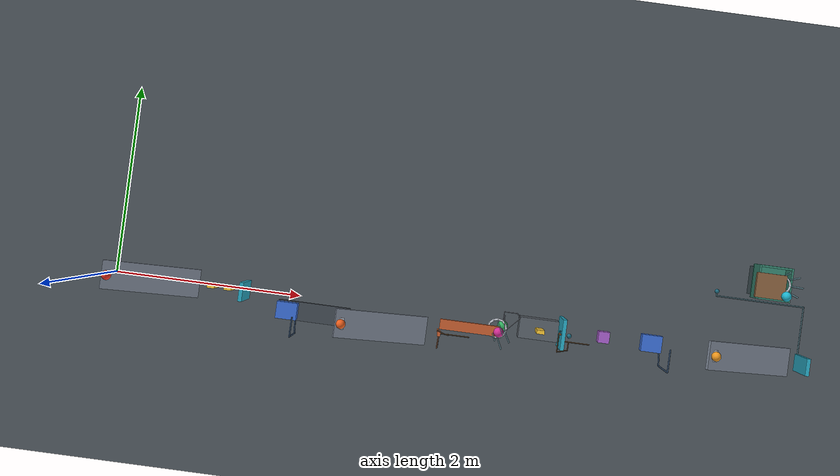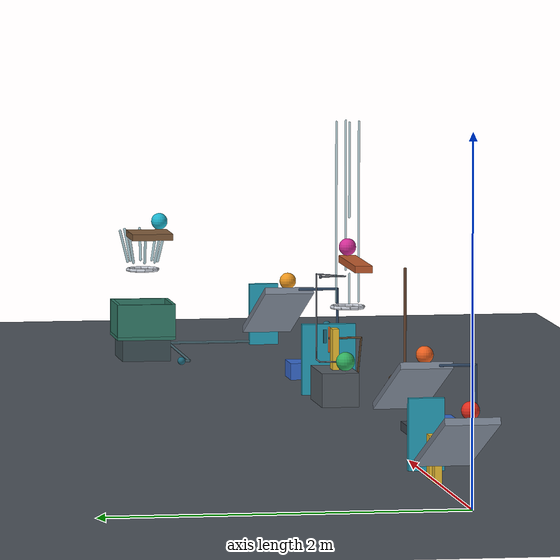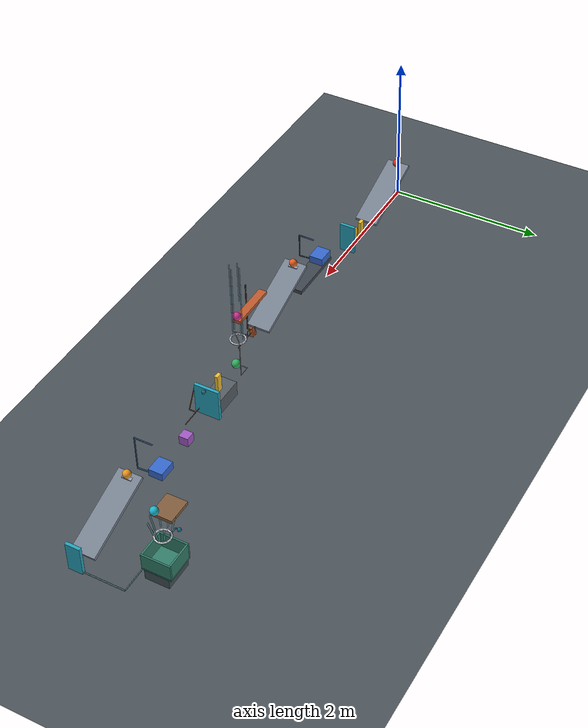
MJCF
<mujoco model="passive_chain_reaction_revised2">
  <compiler angle="degree" autolimits="true" inertiafromgeom="auto"/>
  <option timestep="0.002" gravity="0 0 -9.81" integrator="implicitfast" cone="elliptic" iterations="100" tolerance="1e-10"/>
  <size njmax="4000" nconmax="800"/>

  <!-- All initial velocities are zero. -->
  <!-- Soft-contact damping approximates restitution 0.05. -->
  <!-- Level seats hold ball2 and ball4 until their carts arrive. -->
  <!-- The lever latch blocks horizontal striker motion rather than allowing the plate to slide beneath a strut. -->
  <!-- The pendulum has a rigid bypass frame outside ring1; its bob remains 0.50 m below its hinge initially. -->

  <visual>
    <global azimuth="110" elevation="-25"/>
    <headlight ambient="0.35 0.35 0.35" diffuse="0.65 0.65 0.65" specular="0.15 0.15 0.15"/>
    <map znear="0.01" zfar="50"/>
  </visual>

  <worldbody>
    <light name="overhead_light" pos="4 -3 7" dir="0 0 -1" diffuse="0.8 0.8 0.8"/>
    <camera name="overview" pos="4 -9 6.4" xyaxes="1 0 0 0 0.58 0.814"/>
    <geom name="floor" type="plane" size="15 8 0.1" friction="0.70 0.005 0.003" condim="6" solref="0.006 0.6901" rgba="0.30 0.33 0.36 1"/>

    <body name="ramp1" pos="0 0 0">
      <geom name="ramp1_surface" type="box" pos="0.463006 0 0.302216" quat="0.984807753 0 0.173648178 0" size="0.50 0.15 0.02" friction="0.70 0.005 0.0001" condim="6" solref="0.006 0.6901" rgba="0.48 0.52 0.58 1"/>
    </body>

    <body name="ball1" pos="0.064086 0 0.521904">
      <freejoint name="ball1_free"/>
      <geom name="ball1_sphere" type="sphere" size="0.05" mass="0.20" friction="0.70 0.005 0.0001" condim="6" solref="0.006 0.6901" rgba="0.90 0.18 0.12 1"/>
    </body>

    <body name="domino1" pos="1.079693 0 0.12">
      <freejoint name="domino1_free"/>
      <geom name="domino1_box" type="box" size="0.04 0.02 0.12" mass="0.25" friction="0.70 0.005 0.0001" condim="6" solref="0.006 0.6901" rgba="0.95 0.76 0.20 1"/>
    </body>

    <body name="domino2" pos="1.259693 0 0.12">
      <freejoint name="domino2_free"/>
      <geom name="domino2_box" type="box" size="0.04 0.02 0.12" mass="0.25" friction="0.70 0.005 0.0001" condim="6" solref="0.006 0.6901" rgba="0.95 0.76 0.20 1"/>
    </body>

    <body name="flap1" pos="1.439693 0 0.02">
      <joint name="flap1_hinge" type="hinge" axis="0 1 0" range="0 65" damping="0.04" solreflimit="0.004 1" solimplimit="0.99 0.999 0.0001"/>
      <geom name="flap1_panel" type="box" pos="0 0 0.20" size="0.02 0.10 0.20" mass="0.30" friction="0.70 0.005 0.0001" condim="6" solref="0.006 0.6901" rgba="0.15 0.65 0.75 1"/>
    </body>

    <body name="cart1_rail" pos="2.184693 -0.15 0.123">
      <geom name="cart1_rail_box" type="box" size="0.385 0.10 0.025" friction="0.70 0.005 0.0001" condim="6" solref="0.006 0.6901" rgba="0.25 0.28 0.31 1"/>
    </body>

    <body name="cart1" pos="1.909693 -0.15 0.20">
      <joint name="cart1_slide" type="slide" axis="1 0 0" range="0 0.60" damping="0.20" solreflimit="0.004 1" solimplimit="0.99 0.999 0.0001"/>
      <geom name="cart1_box" type="box" size="0.11 0.09 0.05" mass="0.50" friction="0.70 0.005 0.0001" condim="6" solref="0.006 0.6901" rgba="0.22 0.42 0.82 1"/>
      <geom name="cart1_mast_base" type="capsule" fromto="0.09 0 0 0.11 -0.23 0" size="0.008" mass="0" friction="0.70 0.005 0.0001" condim="6" solref="0.006 0.6901" rgba="0.20 0.30 0.42 1"/>
      <geom name="cart1_mast" type="capsule" fromto="0.11 -0.23 0 0.11 -0.23 0.325" size="0.008" mass="0" friction="0.70 0.005 0.0001" condim="6" solref="0.006 0.6901" rgba="0.20 0.30 0.42 1"/>
      <geom name="cart1_pusher" type="capsule" fromto="0.11 -0.23 0.325 0.11 -0.03 0.325" size="0.008" mass="0" friction="0.70 0.005 0.0001" condim="6" solref="0.006 0.6901" rgba="0.20 0.30 0.42 1"/>
    </body>

    <body name="ramp2" pos="2.463607 -0.18 0">
      <geom name="ramp2_surface" type="box" pos="0.463006 0 0.302216" quat="0.984807753 0 0.173648178 0" size="0.50 0.15 0.02" friction="0.70 0.005 0.0001" condim="6" solref="0.006 0.6901" rgba="0.48 0.52 0.58 1"/>
      <geom name="ramp2_start_seat" type="box" pos="0.064086 0 0.469" size="0.025 0.06 0.006" friction="0.70 0.005 0.0001" condim="6" solref="0.006 0.6901" rgba="0.62 0.65 0.70 1"/>
    </body>

    <body name="ball2" pos="2.527693 -0.18 0.525">
      <freejoint name="ball2_free"/>
      <geom name="ball2_sphere" type="sphere" size="0.05" mass="0.20" friction="0.70 0.005 0.0001" condim="6" solref="0.006 0.6901" rgba="0.94 0.38 0.12 1"/>
    </body>

    <body name="lever1" pos="3.841300 0 0.90">
      <inertial pos="0 0 0" mass="0.50" diaginertia="0.000483333 0.015066667 0.015416667"/>
      <joint name="lever1_hinge" type="hinge" axis="0 -1 0" range="0 45" damping="0.04" stiffness="4.0" springref="45" solreflimit="0.004 1" solimplimit="0.99 0.999 0.0001"/>
      <geom name="lever1_beam" type="box" size="0.30 0.05 0.02" mass="0" friction="0.70 0.005 0.0001" condim="6" solref="0.006 0.6901" rgba="0.76 0.36 0.18 1"/>
      <geom name="lever1_striker_arm" type="capsule" fromto="-0.30 -0.24 0 -0.30 -0.24 -0.68" size="0.008" mass="0" friction="0.70 0.005 0.0001" condim="6" solref="0.006 0.6901" rgba="0.42 0.28 0.20 1"/>
      <geom name="lever1_striker_crossarm" type="capsule" fromto="-0.30 -0.24 -0.68 -0.30 -0.18 -0.68" size="0.008" mass="0" friction="0.70 0.005 0.0001" condim="6" solref="0.006 0.6901" rgba="0.42 0.28 0.20 1"/>
      <geom name="lever1_striker_plate" type="box" pos="-0.30 -0.18 -0.71" size="0.018 0.025 0.06" mass="0" friction="0.70 0.005 0.0001" condim="6" solref="0.006 0.6901" rgba="0.76 0.36 0.18 1"/>
    </body>

    <!-- The bar's left cap touches the striker's forward face at its mid-height. -->
    <!-- Its initial load is axial, producing no opening torque about the vertical latch hinge. -->
    <!-- The adjacent paddle is positioned for ball2 to contact it at approximately the striker-contact position. -->
    <body name="lever1_latch" pos="3.861300 -0.18 0.19">
      <inertial pos="-0.15 0.02 0.03" mass="0.02" diaginertia="0.001 0.001 0.0016"/>
      <joint name="lever1_latch_hinge" type="hinge" axis="0 0 1" range="-100 0" damping="0.04" frictionloss="0.015" solreflimit="0.004 1" solimplimit="0.99 0.999 0.0001"/>
      <geom name="lever1_latch_bar" type="capsule" fromto="-0.296 0 0 0 0 0" size="0.006" mass="0" friction="0.70 0.005 0.0001" condim="6" solref="0.006 0.6901" rgba="0.40 0.30 0.20 1"/>
      <geom name="lever1_latch_paddle" type="box" pos="-0.337292 0.035 0" size="0.008 0.009 0.035" mass="0" friction="0.70 0.005 0.0001" condim="6" solref="0.006 0.6901" rgba="0.82 0.42 0.18 1"/>
      <geom name="lever1_latch_paddle_stem" type="capsule" fromto="-0.337292 0.035 0 -0.337292 0.035 0.085" size="0.004" mass="0" friction="0.70 0.005 0.0001" condim="6" solref="0.006 0.6901" rgba="0.40 0.30 0.20 1"/>
      <geom name="lever1_latch_paddle_crossarm" type="capsule" fromto="-0.337292 0.035 0.085 -0.22 0 0.085" size="0.004" mass="0" friction="0.70 0.005 0.0001" condim="6" solref="0.006 0.6901" rgba="0.40 0.30 0.20 1"/>
      <geom name="lever1_latch_crossarm_support" type="capsule" fromto="-0.22 0 0.085 -0.22 0 0" size="0.004" mass="0" friction="0.70 0.005 0.0001" condim="6" solref="0.006 0.6901" rgba="0.40 0.30 0.20 1"/>
    </body>

    <body name="ball3" pos="4.126300 0 0.97">
      <freejoint name="ball3_free"/>
      <geom name="ball3_sphere" type="sphere" size="0.05" mass="0.20" friction="0.70 0.005 0.0001" condim="6" solref="0.006 0.6901" rgba="0.84 0.18 0.60 1"/>
    </body>

    <body name="launch_guides" pos="4.126300 0 0">
      <geom name="launch_guides_right" type="capsule" fromto="0.066 0 0.83 0.066 0 1.70" size="0.006" friction="0.70 0.005 0.0001" condim="6" solref="0.006 0.6901" rgba="0.45 0.65 0.70 0.55"/>
      <geom name="launch_guides_front" type="capsule" fromto="0 -0.066 0.65 0 -0.066 1.70" size="0.006" friction="0.70 0.005 0.0001" condim="6" solref="0.006 0.6901" rgba="0.45 0.65 0.70 0.55"/>
      <geom name="launch_guides_back" type="capsule" fromto="0 0.066 0.65 0 0.066 1.70" size="0.006" friction="0.70 0.005 0.0001" condim="6" solref="0.006 0.6901" rgba="0.45 0.65 0.70 0.55"/>
      <geom name="launch_guides_left_lower" type="capsule" fromto="-0.066 0 0.65 -0.066 0 0.82" size="0.006" friction="0.70 0.005 0.0001" condim="6" solref="0.006 0.6901" rgba="0.45 0.65 0.70 0.55"/>
      <geom name="launch_guides_left_upper" type="capsule" fromto="-0.066 0 1.15 -0.066 0 1.70" size="0.006" friction="0.70 0.005 0.0001" condim="6" solref="0.006 0.6901" rgba="0.45 0.65 0.70 0.55"/>
    </body>

    <!-- The polygon apothem minus the capsule radius is 0.08 m. -->
    <body name="ring1" pos="4.126300 0 0.62">
      <geom name="ring1_segment01" type="capsule" fromto="0.093175 0 0 0.080692 0.046587 0" size="0.01" friction="0.70 0.005 0.0001" condim="6" solref="0.006 0.6901" rgba="0.80 0.82 0.86 1"/>
      <geom name="ring1_segment02" type="capsule" fromto="0.080692 0.046587 0 0.046587 0.080692 0" size="0.01" friction="0.70 0.005 0.0001" condim="6" solref="0.006 0.6901" rgba="0.80 0.82 0.86 1"/>
      <geom name="ring1_segment03" type="capsule" fromto="0.046587 0.080692 0 0 0.093175 0" size="0.01" friction="0.70 0.005 0.0001" condim="6" solref="0.006 0.6901" rgba="0.80 0.82 0.86 1"/>
      <geom name="ring1_segment04" type="capsule" fromto="0 0.093175 0 -0.046587 0.080692 0" size="0.01" friction="0.70 0.005 0.0001" condim="6" solref="0.006 0.6901" rgba="0.80 0.82 0.86 1"/>
      <geom name="ring1_segment05" type="capsule" fromto="-0.046587 0.080692 0 -0.080692 0.046587 0" size="0.01" friction="0.70 0.005 0.0001" condim="6" solref="0.006 0.6901" rgba="0.80 0.82 0.86 1"/>
      <geom name="ring1_segment06" type="capsule" fromto="-0.080692 0.046587 0 -0.093175 0 0" size="0.01" friction="0.70 0.005 0.0001" condim="6" solref="0.006 0.6901" rgba="0.80 0.82 0.86 1"/>
      <geom name="ring1_segment07" type="capsule" fromto="-0.093175 0 0 -0.080692 -0.046587 0" size="0.01" friction="0.70 0.005 0.0001" condim="6" solref="0.006 0.6901" rgba="0.80 0.82 0.86 1"/>
      <geom name="ring1_segment08" type="capsule" fromto="-0.080692 -0.046587 0 -0.046587 -0.080692 0" size="0.01" friction="0.70 0.005 0.0001" condim="6" solref="0.006 0.6901" rgba="0.80 0.82 0.86 1"/>
      <geom name="ring1_segment09" type="capsule" fromto="-0.046587 -0.080692 0 0 -0.093175 0" size="0.01" friction="0.70 0.005 0.0001" condim="6" solref="0.006 0.6901" rgba="0.80 0.82 0.86 1"/>
      <geom name="ring1_segment10" type="capsule" fromto="0 -0.093175 0 0.046587 -0.080692 0" size="0.01" friction="0.70 0.005 0.0001" condim="6" solref="0.006 0.6901" rgba="0.80 0.82 0.86 1"/>
      <geom name="ring1_segment11" type="capsule" fromto="0.046587 -0.080692 0 0.080692 -0.046587 0" size="0.01" friction="0.70 0.005 0.0001" condim="6" solref="0.006 0.6901" rgba="0.80 0.82 0.86 1"/>
      <geom name="ring1_segment12" type="capsule" fromto="0.080692 -0.046587 0 0.093175 0 0" size="0.01" friction="0.70 0.005 0.0001" condim="6" solref="0.006 0.6901" rgba="0.80 0.82 0.86 1"/>
    </body>

    <!-- Total mass: counterweight 0.25, frame 0.05, bob 0.05 = 0.35 kg. -->
    <!-- The counterweight balances the frame's initial x mass moment, avoiding a gravity-driven start. -->
    <!-- The vertical frame member is outside the ring in both x and y. -->
    <body name="pendulum1" pos="4.196300 0 0.791738">
      <joint name="pendulum1_hinge" type="hinge" axis="0 -1 0" range="0 40" damping="0.04" solreflimit="0.004 1" solimplimit="0.99 0.999 0.0001"/>
      <geom name="pendulum1_pivot_mass" type="sphere" pos="-0.0196 0.15 0" size="0.01" mass="0.25" friction="0.70 0.005 0.0001" condim="6" solref="0.006 0.6901" rgba="0.28 0.30 0.34 1"/>
      <geom name="pendulum1_counterweight_arm" type="capsule" fromto="0 0 0 -0.0196 0.15 0" size="0.004" mass="0" friction="0.70 0.005 0.0001" condim="6" solref="0.006 0.6901" rgba="0.48 0.50 0.54 1"/>
      <geom name="pendulum1_top_arm" type="capsule" fromto="0 0 0 0.14 0.15 0" size="0.004" mass="0.01" friction="0.70 0.005 0.0001" condim="6" solref="0.006 0.6901" rgba="0.48 0.50 0.54 1"/>
      <geom name="pendulum1_rod" type="capsule" fromto="0.14 0.15 0 0.14 0.15 -0.50" size="0.004" mass="0.025" friction="0.70 0.005 0.0001" condim="6" solref="0.006 0.6901" rgba="0.48 0.50 0.54 1"/>
      <geom name="pendulum1_bottom_arm" type="capsule" fromto="0.14 0.15 -0.50 0 0.15 -0.50" size="0.004" mass="0.01" friction="0.70 0.005 0.0001" condim="6" solref="0.006 0.6901" rgba="0.48 0.50 0.54 1"/>
      <geom name="pendulum1_bob_arm" type="capsule" fromto="0 0.15 -0.50 0 0 -0.50" size="0.004" mass="0.005" friction="0.70 0.005 0.0001" condim="6" solref="0.006 0.6901" rgba="0.48 0.50 0.54 1"/>
      <geom name="pendulum1_bob" type="sphere" pos="0 0 -0.50" size="0.055" mass="0.05" friction="0.70 0.005 0.0001" condim="6" solref="0.006 0.6901" rgba="0.20 0.70 0.38 1"/>
    </body>

    <body name="domino3_platform" pos="4.587 0 0.10">
      <geom name="domino3_platform_box" type="box" size="0.21 0.11 0.10" friction="0.70 0.005 0.0001" condim="6" solref="0.006 0.6901" rgba="0.34 0.37 0.40 1"/>
    </body>

    <body name="domino3" pos="4.589897 0 0.32">
      <freejoint name="domino3_free"/>
      <geom name="domino3_box" type="box" size="0.04 0.02 0.12" mass="0.25" friction="0.70 0.005 0.0001" condim="6" solref="0.006 0.6901" rgba="0.95 0.76 0.20 1"/>
    </body>

    <body name="door1" pos="4.829897 0 0.021">
      <joint name="door1_hinge" type="hinge" axis="0 1 0" range="0 70" damping="0.04" stiffness="1.60" springref="70" solreflimit="0.004 1" solimplimit="0.99 0.999 0.0001"/>
      <geom name="door1_panel" type="box" pos="0 0 0.21" size="0.02 0.16 0.21" mass="0.45" friction="0.70 0.005 0.0001" condim="6" solref="0.006 0.6901" rgba="0.15 0.65 0.75 1"/>
      <geom name="door1_impact_receiver" type="box" pos="-0.026 0.025 0.349" size="0.01 0.008 0.04" mass="0" friction="0.70 0.005 0.0001" condim="6" solref="0.006 0.6901" rgba="0.12 0.42 0.50 1"/>
      <geom name="door1_low_striker" type="sphere" pos="0.06 0 0.405" size="0.025" mass="0" friction="0.70 0.005 0.0001" condim="6" solref="0.006 0.6901" rgba="0.12 0.42 0.50 1"/>
    </body>

    <body name="door1_latch" pos="5.149897 -0.10 0.10">
      <inertial pos="-0.14 0 0.09" mass="0.03" diaginertia="0.001 0.001 0.0016"/>
      <joint name="door1_latch_hinge" type="hinge" axis="0 0 1" range="-100 0" damping="0.04" frictionloss="0.025" solreflimit="0.004 1" solimplimit="0.99 0.999 0.0001"/>
      <geom name="door1_latch_bar" type="capsule" fromto="-0.294 0 0 0 0 0" size="0.006" mass="0" friction="0.70 0.005 0.0001" condim="6" solref="0.006 0.6901" rgba="0.40 0.30 0.20 1"/>
      <geom name="door1_latch_sidearm" type="capsule" fromto="-0.22 0 0 -0.22 -0.09 0" size="0.006" mass="0" friction="0.70 0.005 0.0001" condim="6" solref="0.006 0.6901" rgba="0.40 0.30 0.20 1"/>
      <geom name="door1_latch_outerarm" type="capsule" fromto="-0.22 -0.09 0 -0.36 -0.09 0.26" size="0.006" mass="0" friction="0.70 0.005 0.0001" condim="6" solref="0.006 0.6901" rgba="0.40 0.30 0.20 1"/>
      <geom name="door1_latch_crossarm" type="capsule" fromto="-0.36 -0.09 0.26 -0.36 0.10 0.26" size="0.006" mass="0" friction="0.70 0.005 0.0001" condim="6" solref="0.006 0.6901" rgba="0.40 0.30 0.20 1"/>
      <geom name="door1_latch_paddle" type="capsule" fromto="-0.349 0.10 0.18 -0.349 0.10 0.32" size="0.007" mass="0" friction="0.70 0.005 0.0001" condim="6" solref="0.006 0.6901" rgba="0.82 0.42 0.18 1"/>
    </body>

    <body name="block1" pos="5.299897 0 0.06">
      <freejoint name="block1_free"/>
      <geom name="block1_box" type="box" size="0.06 0.06 0.06" mass="0.35" friction="0.70 0.005 0.0001" condim="6" solref="0.006 0.6901" rgba="0.64 0.36 0.78 1"/>
    </body>

    <body name="cart2" pos="5.819897 0 0.0515">
      <joint name="cart2_slide" type="slide" axis="1 0 0" range="0 0.58" damping="0.20" solreflimit="0.004 1" solimplimit="0.99 0.999 0.0001"/>
      <geom name="cart2_box" type="box" size="0.11 0.09 0.05" mass="0.50" friction="0.70 0.005 0.0001" condim="6" solref="0.006 0.6901" rgba="0.22 0.42 0.82 1"/>
      <geom name="cart2_mast_base" type="capsule" fromto="0.09 0 0 0.11 -0.23 0" size="0.008" mass="0" friction="0.70 0.005 0.0001" condim="6" solref="0.006 0.6901" rgba="0.20 0.30 0.42 1"/>
      <geom name="cart2_mast" type="capsule" fromto="0.11 -0.23 0 0.11 -0.23 0.4735" size="0.008" mass="0" friction="0.70 0.005 0.0001" condim="6" solref="0.006 0.6901" rgba="0.20 0.30 0.42 1"/>
      <geom name="cart2_pusher" type="capsule" fromto="0.11 -0.23 0.4735 0.11 0 0.4735" size="0.008" mass="0" friction="0.70 0.005 0.0001" condim="6" solref="0.006 0.6901" rgba="0.20 0.30 0.42 1"/>
    </body>

    <body name="ramp3" pos="6.343812 0 0">
      <geom name="ramp3_surface" type="box" pos="0.463006 0 0.302216" quat="0.984807753 0 0.173648178 0" size="0.50 0.15 0.02" friction="0.70 0.005 0.0001" condim="6" solref="0.006 0.6901" rgba="0.48 0.52 0.58 1"/>
      <geom name="ramp3_start_seat" type="box" pos="0.064086 0 0.469" size="0.025 0.06 0.006" friction="0.70 0.005 0.0001" condim="6" solref="0.006 0.6901" rgba="0.62 0.65 0.70 1"/>
    </body>

    <body name="ball4" pos="6.407897 0 0.525">
      <freejoint name="ball4_free"/>
      <geom name="ball4_sphere" type="sphere" size="0.05" mass="0.20" friction="0.70 0.005 0.0001" condim="6" solref="0.006 0.6901" rgba="0.94 0.60 0.12 1"/>
    </body>

    <body name="flap2" pos="7.403504 0 0.021">
      <joint name="flap2_hinge" type="hinge" axis="0 1 0" range="0 60" damping="0.04" solreflimit="0.004 1" solimplimit="0.99 0.999 0.0001"/>
      <geom name="flap2_panel" type="box" pos="0 0 0.19" size="0.02 0.09 0.19" mass="0.28" friction="0.70 0.005 0.0001" condim="6" solref="0.006 0.6901" rgba="0.15 0.65 0.75 1"/>
      <geom name="flap2_lateral_arm" type="capsule" fromto="0 0 0.018 0 0.60 0.018" size="0.008" mass="0" friction="0.70 0.005 0.0001" condim="6" solref="0.006 0.6901" rgba="0.28 0.40 0.44 1"/>
      <geom name="flap2_crank_arm" type="capsule" fromto="0 0.60 0.018 -0.947 0.60 0.018" size="0.008" mass="0" friction="0.70 0.005 0.0001" condim="6" solref="0.006 0.6901" rgba="0.28 0.40 0.44 1"/>
      <geom name="flap2_distal_crossarm" type="capsule" fromto="-0.947 0.60 0.018 -0.947 0.649 0.018" size="0.008" mass="0" friction="0.70 0.005 0.0001" condim="6" solref="0.006 0.6901" rgba="0.28 0.40 0.44 1"/>
      <geom name="flap2_shelf_striker" type="sphere" pos="-0.947 0.649 0.018" size="0.024" mass="0" friction="0.70 0.005 0.0001" condim="6" solref="0.006 0.6901" rgba="0.12 0.42 0.50 1"/>
    </body>

    <body name="shelf1" pos="6.785504 0.80 0.78">
      <geom name="shelf1_board" type="box" size="0.15 0.125 0.02" friction="0.70 0.005 0.0001" condim="6" solref="0.006 0.6901" rgba="0.52 0.37 0.24 1"/>
    </body>

    <body name="ball5" pos="6.934504 0.72 0.85">
      <freejoint name="ball5_free"/>
      <geom name="ball5_sphere" type="sphere" size="0.05" mass="0.20" friction="0.70 0.005 0.0001" condim="6" solref="0.006 0.6901" rgba="0.12 0.72 0.82 1"/>
    </body>

    <body name="ring2" pos="6.965504 0.82 0.55">
      <geom name="ring2_segment01" type="capsule" fromto="0.093175 0 0 0.080692 0.046587 0" size="0.01" friction="0.70 0.005 0.0001" condim="6" solref="0.006 0.6901" rgba="0.80 0.82 0.86 1"/>
      <geom name="ring2_segment02" type="capsule" fromto="0.080692 0.046587 0 0.046587 0.080692 0" size="0.01" friction="0.70 0.005 0.0001" condim="6" solref="0.006 0.6901" rgba="0.80 0.82 0.86 1"/>
      <geom name="ring2_segment03" type="capsule" fromto="0.046587 0.080692 0 0 0.093175 0" size="0.01" friction="0.70 0.005 0.0001" condim="6" solref="0.006 0.6901" rgba="0.80 0.82 0.86 1"/>
      <geom name="ring2_segment04" type="capsule" fromto="0 0.093175 0 -0.046587 0.080692 0" size="0.01" friction="0.70 0.005 0.0001" condim="6" solref="0.006 0.6901" rgba="0.80 0.82 0.86 1"/>
      <geom name="ring2_segment05" type="capsule" fromto="-0.046587 0.080692 0 -0.080692 0.046587 0" size="0.01" friction="0.70 0.005 0.0001" condim="6" solref="0.006 0.6901" rgba="0.80 0.82 0.86 1"/>
      <geom name="ring2_segment06" type="capsule" fromto="-0.080692 0.046587 0 -0.093175 0 0" size="0.01" friction="0.70 0.005 0.0001" condim="6" solref="0.006 0.6901" rgba="0.80 0.82 0.86 1"/>
      <geom name="ring2_segment07" type="capsule" fromto="-0.093175 0 0 -0.080692 -0.046587 0" size="0.01" friction="0.70 0.005 0.0001" condim="6" solref="0.006 0.6901" rgba="0.80 0.82 0.86 1"/>
      <geom name="ring2_segment08" type="capsule" fromto="-0.080692 -0.046587 0 -0.046587 -0.080692 0" size="0.01" friction="0.70 0.005 0.0001" condim="6" solref="0.006 0.6901" rgba="0.80 0.82 0.86 1"/>
      <geom name="ring2_segment09" type="capsule" fromto="-0.046587 -0.080692 0 0 -0.093175 0" size="0.01" friction="0.70 0.005 0.0001" condim="6" solref="0.006 0.6901" rgba="0.80 0.82 0.86 1"/>
      <geom name="ring2_segment10" type="capsule" fromto="0 -0.093175 0 0.046587 -0.080692 0" size="0.01" friction="0.70 0.005 0.0001" condim="6" solref="0.006 0.6901" rgba="0.80 0.82 0.86 1"/>
      <geom name="ring2_segment11" type="capsule" fromto="0.046587 -0.080692 0 0.080692 -0.046587 0" size="0.01" friction="0.70 0.005 0.0001" condim="6" solref="0.006 0.6901" rgba="0.80 0.82 0.86 1"/>
      <geom name="ring2_segment12" type="capsule" fromto="0.080692 -0.046587 0 0.093175 0 0" size="0.01" friction="0.70 0.005 0.0001" condim="6" solref="0.006 0.6901" rgba="0.80 0.82 0.86 1"/>
    </body>

    <body name="shelf_exit_guides" pos="6.965504 0.82 0.55">
      <geom name="shelf_exit_guides_rib01" type="capsule" fromto="0.093175 0 0.05 0.14 0 0.24" size="0.008" friction="0.70 0.005 0.0001" condim="6" solref="0.006 0.6901" rgba="0.45 0.65 0.70 0.65"/>
      <geom name="shelf_exit_guides_rib02" type="capsule" fromto="0.065885 0.065885 0.05 0.098995 0.098995 0.24" size="0.008" friction="0.70 0.005 0.0001" condim="6" solref="0.006 0.6901" rgba="0.45 0.65 0.70 0.65"/>
      <geom name="shelf_exit_guides_rib03" type="capsule" fromto="0 0.093175 0.05 0 0.14 0.24" size="0.008" friction="0.70 0.005 0.0001" condim="6" solref="0.006 0.6901" rgba="0.45 0.65 0.70 0.65"/>
      <geom name="shelf_exit_guides_rib04" type="capsule" fromto="-0.065885 0.065885 0.05 -0.098995 0.098995 0.24" size="0.008" friction="0.70 0.005 0.0001" condim="6" solref="0.006 0.6901" rgba="0.45 0.65 0.70 0.65"/>
      <geom name="shelf_exit_guides_rib05" type="capsule" fromto="-0.093175 0 0.05 -0.14 0 0.24" size="0.008" friction="0.70 0.005 0.0001" condim="6" solref="0.006 0.6901" rgba="0.45 0.65 0.70 0.65"/>
      <geom name="shelf_exit_guides_rib06" type="capsule" fromto="-0.065885 -0.065885 0.05 -0.098995 -0.098995 0.24" size="0.008" friction="0.70 0.005 0.0001" condim="6" solref="0.006 0.6901" rgba="0.45 0.65 0.70 0.65"/>
      <geom name="shelf_exit_guides_rib07" type="capsule" fromto="0 -0.093175 0.05 0 -0.14 0.24" size="0.008" friction="0.70 0.005 0.0001" condim="6" solref="0.006 0.6901" rgba="0.45 0.65 0.70 0.65"/>
      <geom name="shelf_exit_guides_rib08" type="capsule" fromto="0.065885 -0.065885 0.05 0.098995 -0.098995 0.24" size="0.008" friction="0.70 0.005 0.0001" condim="6" solref="0.006 0.6901" rgba="0.45 0.65 0.70 0.65"/>
    </body>

    <body name="bin1" pos="6.965504 0.82 0.15">
      <geom name="bin1_plinth" type="box" pos="0 0 -0.085" size="0.18 0.15 0.065" friction="0.70 0.005 0.003" condim="6" solref="0.006 0.6901" rgba="0.25 0.32 0.34 1"/>
      <geom name="bin1_bottom" type="box" pos="0 0 -0.01" size="0.18 0.18 0.01" friction="0.70 0.005 0.003" condim="6" solref="0.006 0.6901" rgba="0.20 0.50 0.42 1"/>
      <geom name="bin1_wall_left" type="box" pos="-0.17 0 0.10" size="0.01 0.18 0.10" friction="0.70 0.005 0.003" condim="6" solref="0.006 0.6901" rgba="0.20 0.50 0.42 1"/>
      <geom name="bin1_wall_right" type="box" pos="0.17 0 0.10" size="0.01 0.18 0.10" friction="0.70 0.005 0.003" condim="6" solref="0.006 0.6901" rgba="0.20 0.50 0.42 1"/>
      <geom name="bin1_wall_front" type="box" pos="0 -0.17 0.10" size="0.16 0.01 0.10" friction="0.70 0.005 0.003" condim="6" solref="0.006 0.6901" rgba="0.20 0.50 0.42 1"/>
      <geom name="bin1_wall_back" type="box" pos="0 0.17 0.10" size="0.16 0.01 0.10" friction="0.70 0.005 0.003" condim="6" solref="0.006 0.6901" rgba="0.20 0.50 0.42 1"/>
    </body>
  </worldbody>

  <keyframe>
    <key name="start" time="0"/>
  </keyframe>
</mujoco>
